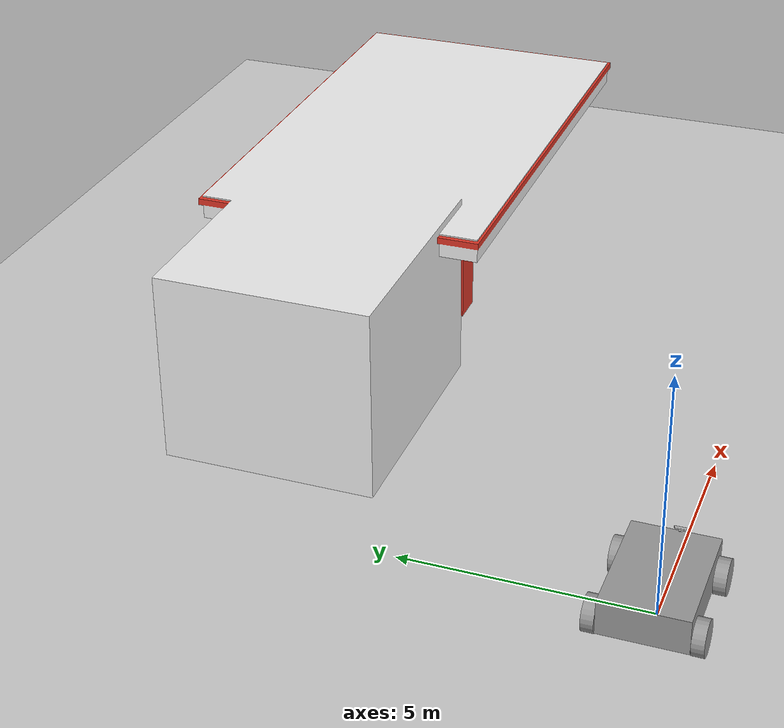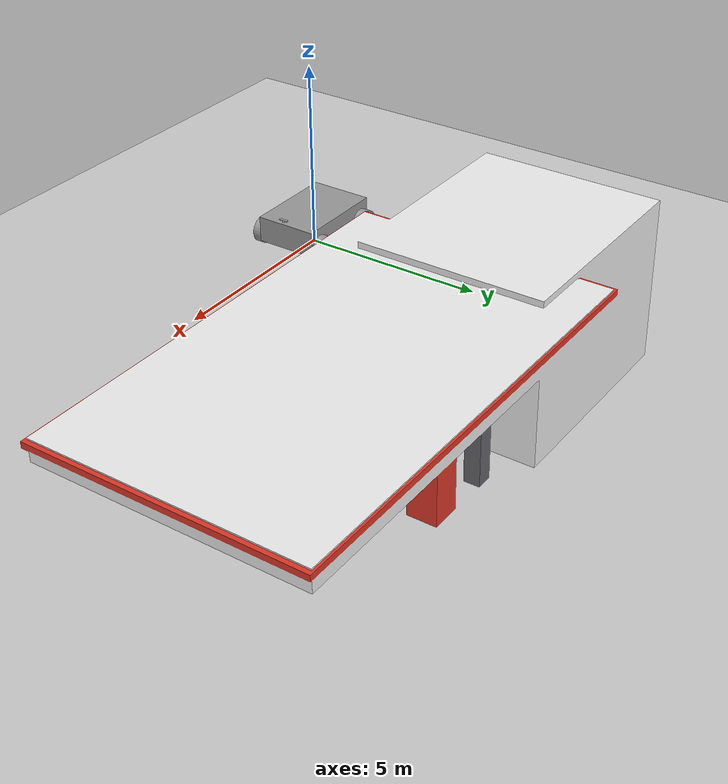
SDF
<?xml version="1.0" ?>
<sdf version="1.4">
  <world name="default">
    <include>
      <uri>model://ground_plane</uri>
    </include>
    <include>
      <uri>model://sun</uri>
    </include>
    <include>
      <uri>model://Kinect_Car</uri>
      <name>Kinect_Car</name>
      <pose>0.0 0.0 0.5 0 0 0</pose>
    </include>

  </world>
</sdf>
